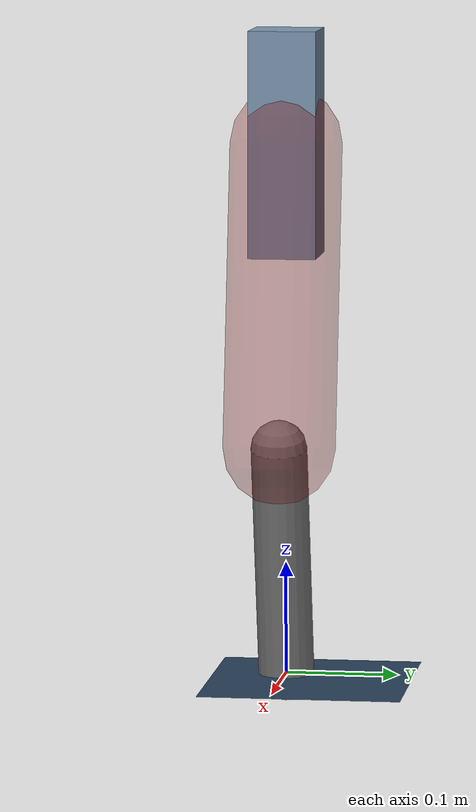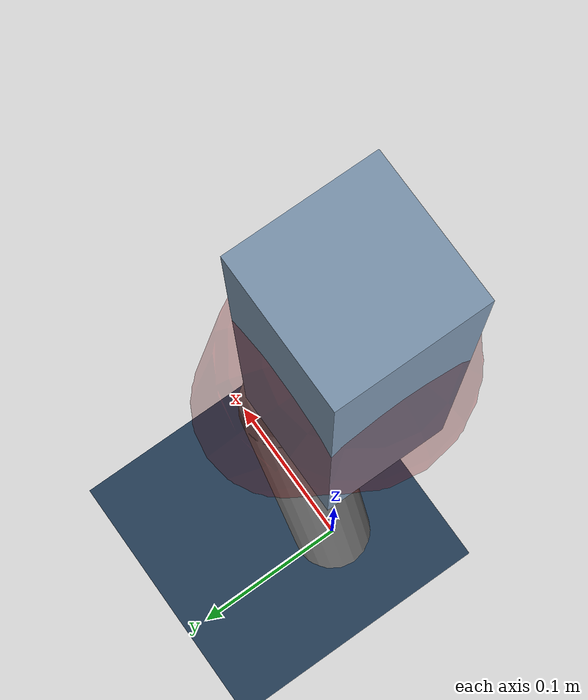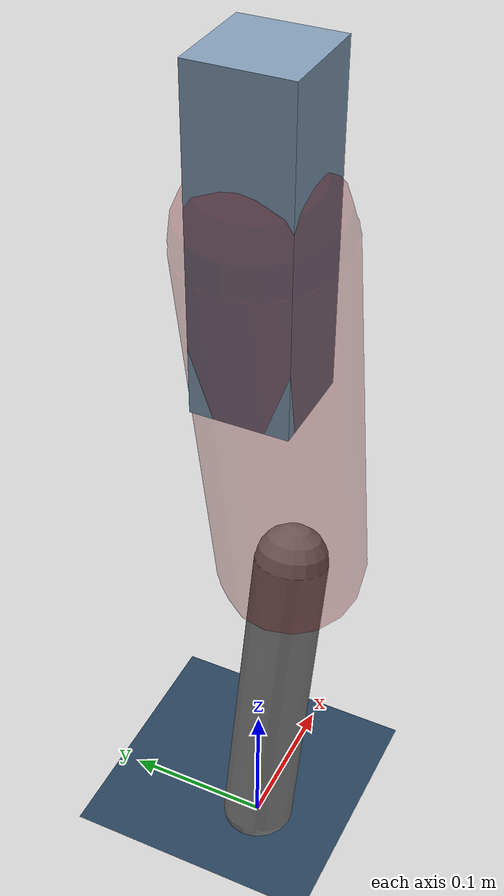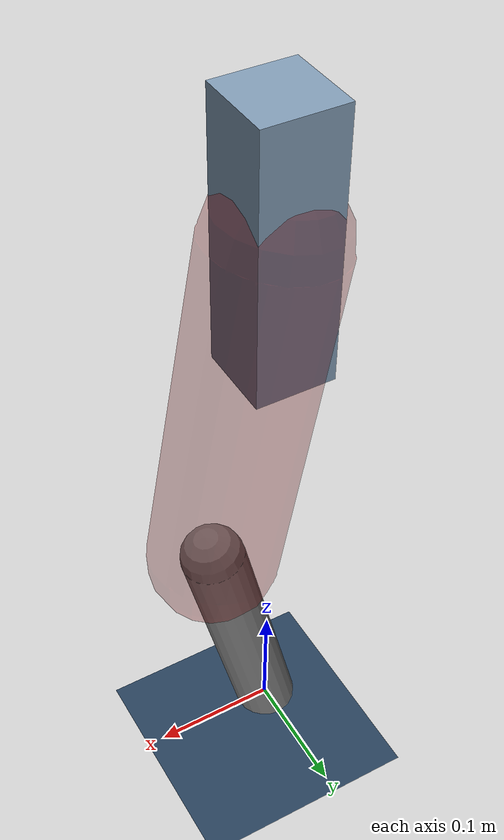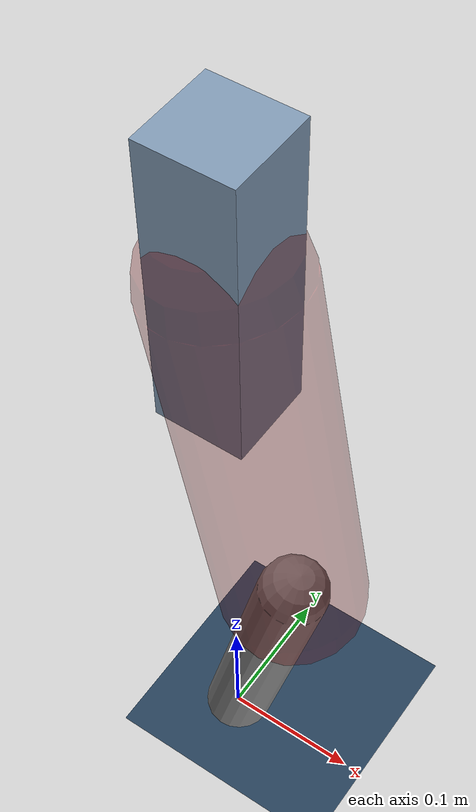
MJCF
<mujoco model="Hopper2D">
	<compiler inertiafromgeom="true" angle="radian" />
	<option timestep="0.001" integrator="implicit" cone="elliptic" solver="Newton" tolerance="1e-10" />

	<default>
		<geom contype="1" conaffinity="1" condim="3" friction="2 0.005 0.0001" solref="0.005 1" />
		<joint limited="true" damping="0.1" />
	</default>

	<asset>
		<texture name="skybox" type="skybox" builtin="gradient" rgb1=".4 .6 .8" rgb2="0 0 0" width="800" height="800" />
		<texture name="grid" type="2d" builtin="checker" rgb1=".1 .2 .3" rgb2=".2 .3 .4" width="300" height="300" mark="edge" markrgb=".2 .3 .4" />
		<material name="ground" texture="grid" texrepeat="1 1" texuniform="true" reflectance="0.1" />
		<material name="leg" rgba="0.5 0.6 0.7 1" />
	</asset>

	<worldbody>

		<geom name="floor" type="plane" size="5 5 0.25" material="ground" />

		<light directional="false" diffuse="0.8 0.8 0.8" specular="0.3 0.3 0.3" pos="0 0 2" dir="0 0 -1" />
		<light mode="targetbodycom" target="base" directional="false" diffuse="0.8 0.8 0.8" specular="0.3 0.3 0.3" pos="0 0 2" dir="0 0 -1" />

		<camera name="fixed" pos="0 -2 1" xyaxes="1 0 0 0 0 1" />
		<camera name="tracking" mode="trackcom" pos="0 -3 1" />

		<body name="root" pos="0 0 0.47494826233933407">
			<joint name="slide_x" type="slide" axis="1 0 0" range="-100 100" />
			<joint name="slide_z" type="slide" axis="0 0 1" range="0 10" />

			<body name="base" pos="0 0 0">
				<geom name="torso" type="box" size="0.03 0.03 0.1" mass="2.758" material="leg" />

				<body name="link1" pos="0 0 0" euler="0 1.3891787392798494 0">
					<joint type="hinge" axis="0 -1 0" pos="0 0 0" name="hinge1" limited="true" range="-3.14 3.14" stiffness="0" damping="0.1" />
					<geom name="thigh" type="capsule" fromto="0 0 0 0.2694587913896488 0 0" size="0.05" rgba="0.5 0 0 0.3" mass="0.9072387367520517" />

					<body name="link2" pos="0.2694587913896488 0 0" euler="0 0.40944052708245976 0">
						<joint type="hinge" axis="0 -1 0" pos="0 0 0" name="hinge2" limited="true" range="-3.14 3.14" stiffness="0" damping="0.1" />
						<geom name="shank" type="capsule" fromto="0 0 0 0.21548947094968532 0 0" size="0.025" mass="0.41389157675974825" />

					</body>
				</body>
			</body>
		</body>
	</worldbody>

	<actuator>
		<motor name="torque1" joint="hinge1" ctrlrange="-88.82279315676921 88.82279315676921" ctrllimited="true" gear="1" />
		<motor name="torque2" joint="hinge2" ctrlrange="-126.6597631343192 126.6597631343192" ctrllimited="true" gear="1" />
	</actuator>
</mujoco>
